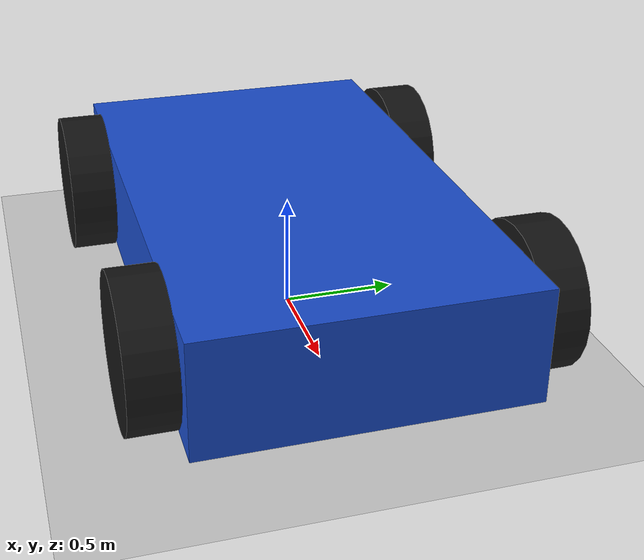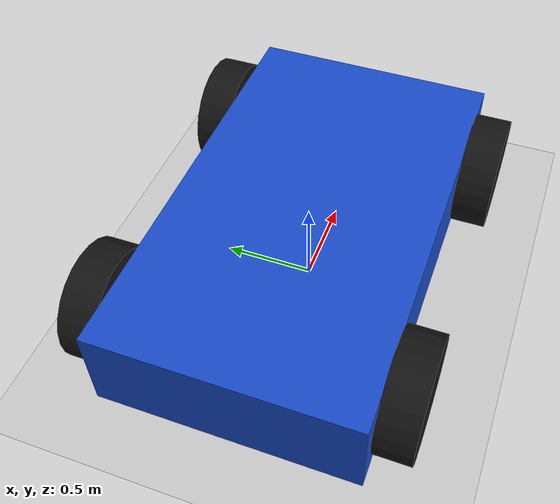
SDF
<?xml version="1.0"?>
<sdf version="1.6">
  <world name="minimal">
    <include><uri>model://sun</uri></include>
    <include><uri>model://ground_plane</uri></include>
    <include>
      <uri>model://ego_vehicle</uri>
      <name>ego_vehicle</name>
      <pose>0 0 0.35 0 0 0</pose>
    </include>
  </world>
</sdf>

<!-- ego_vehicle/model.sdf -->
<sdf version="1.6">
  <model name="ego_vehicle">
    <pose>0 0 0.34 0 0 0</pose>

    <link name="chassis">
      <inertial>
        <mass>1200</mass>
        <inertia><ixx>500</ixx><iyy>900</iyy><izz>1000</izz><ixy>0</ixy><ixz>0</ixz><iyz>0</iyz></inertia>
      </inertial>
      <collision name="collision"><geometry><box><size>2.4 1.4 0.5</size></box></geometry></collision>
      <visual name="visual">
        <geometry><box><size>2.4 1.4 0.5</size></box></geometry>
        <material><ambient>0.1 0.3 0.8 1</ambient><diffuse>0.1 0.3 0.8 1</diffuse></material>
      </visual>
    </link>

    <link name="front_left_knuckle">
      <pose>0.8 0.80 0 0 0 0</pose>
      <inertial><mass>8</mass><inertia><ixx>0.1</ixx><iyy>0.1</iyy><izz>0.1</izz><ixy>0</ixy><ixz>0</ixz><iyz>0</iyz></inertia></inertial>
    </link>
    <link name="front_right_knuckle">
      <pose>0.8 -0.80 0 0 0 0</pose>
      <inertial><mass>8</mass><inertia><ixx>0.1</ixx><iyy>0.1</iyy><izz>0.1</izz><ixy>0</ixy><ixz>0</ixz><iyz>0</iyz></inertia></inertial>
    </link>

    <link name="front_left_wheel">
      <pose>0.8 0.80 0 0 0 0</pose>
      <inertial><mass>20</mass><inertia><ixx>0.579</ixx><iyy>1.024</iyy><izz>0.579</izz><ixy>0</ixy><ixz>0</ixz><iyz>0</iyz></inertia></inertial>
      <collision name="collision">
        <pose>0 0 0 1.5708 0 0</pose>
        <geometry><cylinder><radius>0.32</radius><length>0.2</length></cylinder></geometry>
        <surface><friction><ode><mu>1.0</mu><mu2>1.0</mu2></ode></friction></surface>
      </collision>
      <visual name="visual">
        <pose>0 0 0 1.5708 0 0</pose>
        <geometry><cylinder><radius>0.32</radius><length>0.2</length></cylinder></geometry>
        <material><ambient>0.08 0.08 0.08 1</ambient><diffuse>0.08 0.08 0.08 1</diffuse></material>
      </visual>
    </link>

    <link name="front_right_wheel">
      <pose>0.8 -0.80 0 0 0 0</pose>
      <inertial><mass>20</mass><inertia><ixx>0.579</ixx><iyy>1.024</iyy><izz>0.579</izz><ixy>0</ixy><ixz>0</ixz><iyz>0</iyz></inertia></inertial>
      <collision name="collision">
        <pose>0 0 0 1.5708 0 0</pose>
        <geometry><cylinder><radius>0.32</radius><length>0.2</length></cylinder></geometry>
        <surface><friction><ode><mu>1.0</mu><mu2>1.0</mu2></ode></friction></surface>
      </collision>
      <visual name="visual">
        <pose>0 0 0 1.5708 0 0</pose>
        <geometry><cylinder><radius>0.32</radius><length>0.2</length></cylinder></geometry>
        <material><ambient>0.08 0.08 0.08 1</ambient><diffuse>0.08 0.08 0.08 1</diffuse></material>
      </visual>
    </link>

    <link name="rear_left_wheel">
      <pose>-0.8 0.80 0 0 0 0</pose>
      <inertial><mass>20</mass><inertia><ixx>0.579</ixx><iyy>1.024</iyy><izz>0.579</izz><ixy>0</ixy><ixz>0</ixz><iyz>0</iyz></inertia></inertial>
      <collision name="collision">
        <pose>0 0 0 1.5708 0 0</pose>
        <geometry><cylinder><radius>0.32</radius><length>0.2</length></cylinder></geometry>
        <surface><friction><ode><mu>1.0</mu><mu2>1.0</mu2></ode></friction></surface>
      </collision>
      <visual name="visual">
        <pose>0 0 0 1.5708 0 0</pose>
        <geometry><cylinder><radius>0.32</radius><length>0.2</length></cylinder></geometry>
        <material><ambient>0.08 0.08 0.08 1</ambient><diffuse>0.08 0.08 0.08 1</diffuse></material>
      </visual>
    </link>

    <link name="rear_right_wheel">
      <pose>-0.8 -0.80 0 0 0 0</pose>
      <inertial><mass>20</mass><inertia><ixx>0.579</ixx><iyy>1.024</iyy><izz>0.579</izz><ixy>0</ixy><ixz>0</ixz><iyz>0</iyz></inertia></inertial>
      <collision name="collision">
        <pose>0 0 0 1.5708 0 0</pose>
        <geometry><cylinder><radius>0.32</radius><length>0.2</length></cylinder></geometry>
        <surface><friction><ode><mu>1.0</mu><mu2>1.0</mu2></ode></friction></surface>
      </collision>
      <visual name="visual">
        <pose>0 0 0 1.5708 0 0</pose>
        <geometry><cylinder><radius>0.32</radius><length>0.2</length></cylinder></geometry>
        <material><ambient>0.08 0.08 0.08 1</ambient><diffuse>0.08 0.08 0.08 1</diffuse></material>
      </visual>
    </link>

    <joint name="front_left_steering_joint" type="fixed"><parent>chassis</parent><child>front_left_knuckle</child></joint>
    <joint name="front_right_steering_joint" type="fixed"><parent>chassis</parent><child>front_right_knuckle</child></joint>

    <joint name="front_left_wheel_joint" type="fixed"><parent>front_left_knuckle</parent><child>front_left_wheel</child></joint>
    <joint name="front_right_wheel_joint" type="fixed"><parent>front_right_knuckle</parent><child>front_right_wheel</child></joint>
    <joint name="rear_left_wheel_joint" type="fixed"><parent>chassis</parent><child>rear_left_wheel</child></joint>
    <joint name="rear_right_wheel_joint" type="fixed"><parent>chassis</parent><child>rear_right_wheel</child></joint>

    <link name="steering_wheel">
      <pose>0.35 0 0.85 0 0 0</pose>
      <inertial><mass>1</mass><inertia><ixx>0.01</ixx><iyy>0.01</iyy><izz>0.01</izz><ixy>0</ixy><ixz>0</ixz><iyz>0</iyz></inertia></inertial>
    </link>
    <joint name="steering_wheel_joint" type="fixed"><parent>chassis</parent><child>steering_wheel</child></joint>

    <link name="camera_front_link">
      <pose>1.1 0 0.9 0 0 0</pose>
      <inertial><mass>0.1</mass><inertia><ixx>0.001</ixx><iyy>0.001</iyy><izz>0.001</izz><ixy>0</ixy><ixz>0</ixz><iyz>0</iyz></inertia></inertial>
      <sensor name="camera_front" type="camera">
        <always_on>true</always_on><update_rate>5</update_rate>
        <camera><horizontal_fov>1.396</horizontal_fov><image><width>320</width><height>180</height><format>R8G8B8</format></image><clip><near>0.05</near><far>100</far></clip></camera>
        <plugin name="camera_controller" filename="libgazebo_ros_camera.so"><ros><namespace>/sim/camera</namespace></ros><camera_name>front</camera_name><frame_name>camera_front_link</frame_name></plugin>
      </sensor>
    </link>
    <joint name="camera_fixed_joint" type="fixed"><parent>chassis</parent><child>camera_front_link</child></joint>

    <link name="lidar_link">
      <pose>0 0 1.1 0 0 0</pose>
      <inertial><mass>0.5</mass><inertia><ixx>0.002</ixx><iyy>0.002</iyy><izz>0.002</izz><ixy>0</ixy><ixz>0</ixz><iyz>0</iyz></inertia></inertial>
      <sensor name="lidar" type="ray">
        <always_on>true</always_on><update_rate>5</update_rate>
        <ray><scan><horizontal><samples>360</samples><resolution>1</resolution><min_angle>-3.14159</min_angle><max_angle>3.14159</max_angle></horizontal><vertical><samples>16</samples><resolution>1</resolution><min_angle>-0.26</min_angle><max_angle>0.26</max_angle></vertical></scan><range><min>0.2</min><max>80</max></range></ray>
        <plugin name="lidar_controller" filename="libgazebo_ros_ray_sensor.so"><ros><namespace>/sim/lidar</namespace><remapping>~/out:=points</remapping></ros><output_type>sensor_msgs/PointCloud2</output_type><frame_name>lidar_link</frame_name></plugin>
      </sensor>
    </link>
    <joint name="lidar_fixed_joint" type="fixed"><parent>chassis</parent><child>lidar_link</child></joint>

    <link name="imu_link">
      <pose>0 0 0.7 0 0 0</pose>
      <inertial><mass>0.1</mass><inertia><ixx>0.001</ixx><iyy>0.001</iyy><izz>0.001</izz><ixy>0</ixy><ixz>0</ixz><iyz>0</iyz></inertia></inertial>
      <sensor name="imu" type="imu">
        <always_on>true</always_on><update_rate>50</update_rate>
        <plugin name="imu_controller" filename="libgazebo_ros_imu_sensor.so"><ros><namespace>/sim/imu</namespace><remapping>~/out:=data</remapping></ros><frame_name>imu_link</frame_name></plugin>
      </sensor>
    </link>
    <joint name="imu_fixed_joint" type="fixed"><parent>chassis</parent><child>imu_link</child></joint>

    <link name="gps_link">
      <pose>0 0 0.8 0 0 0</pose>
      <inertial><mass>0.1</mass><inertia><ixx>0.001</ixx><iyy>0.001</iyy><izz>0.001</izz><ixy>0</ixy><ixz>0</ixz><iyz>0</iyz></inertia></inertial>
      <sensor name="gps" type="gps">
        <always_on>true</always_on><update_rate>10</update_rate>
        <plugin name="gps_controller" filename="libgazebo_ros_gps_sensor.so"><ros><namespace>/sim/gnss</namespace><remapping>~/out:=data</remapping></ros><frame_name>gps_link</frame_name></plugin>
      </sensor>
    </link>
    <joint name="gps_fixed_joint" type="fixed"><parent>chassis</parent><child>gps_link</child></joint>

    <!-- Kinematic fallback for the laptop demo: keeps body motion stable while
         the wheel-level Ackermann dynamics are being tuned. -->
    <plugin name="planar_move_fallback" filename="libgazebo_ros_planar_move.so">
      <ros><namespace>/sim/vehicle</namespace></ros>
      <update_rate>100</update_rate>
      <publish_rate>10</publish_rate>
      <publish_odom>false</publish_odom>
      <publish_odom_tf>false</publish_odom_tf>
    </plugin>

    <plugin name="vehicle_ground_truth_odom" filename="libgazebo_ros_p3d.so">
      <ros><namespace>/sim/vehicle</namespace><remapping>odom:=odom</remapping></ros>
      <body_name>chassis</body_name><frame_name>chassis</frame_name><update_rate>50</update_rate><gaussian_noise>0.0</gaussian_noise>
    </plugin>
  </model>
</sdf>
